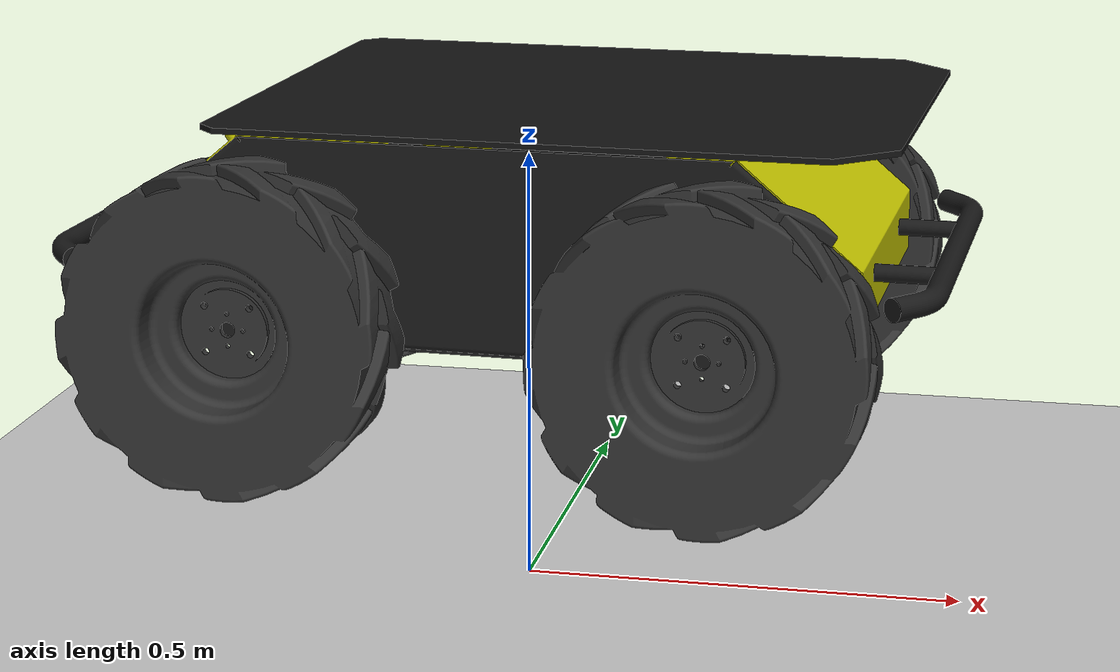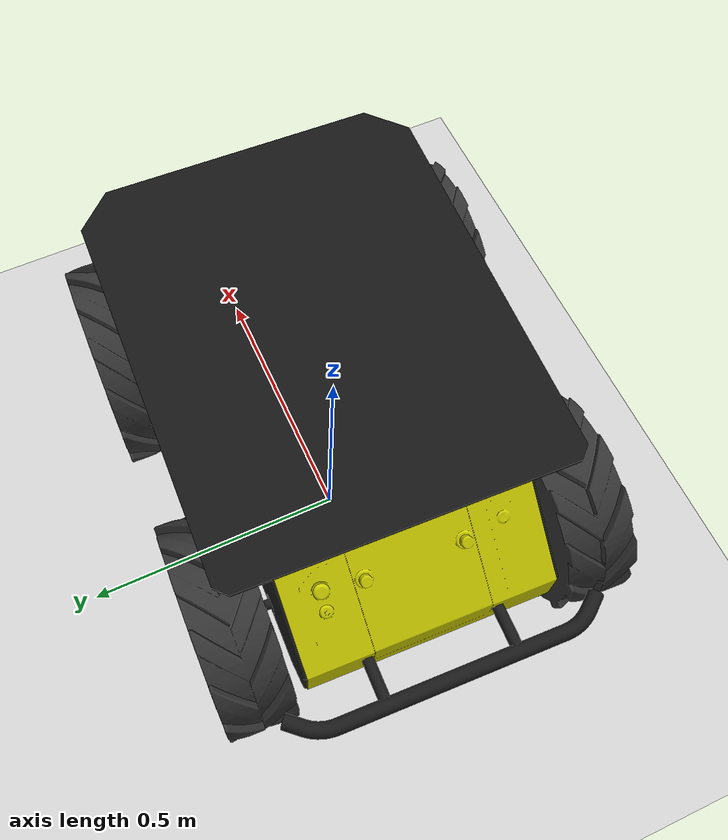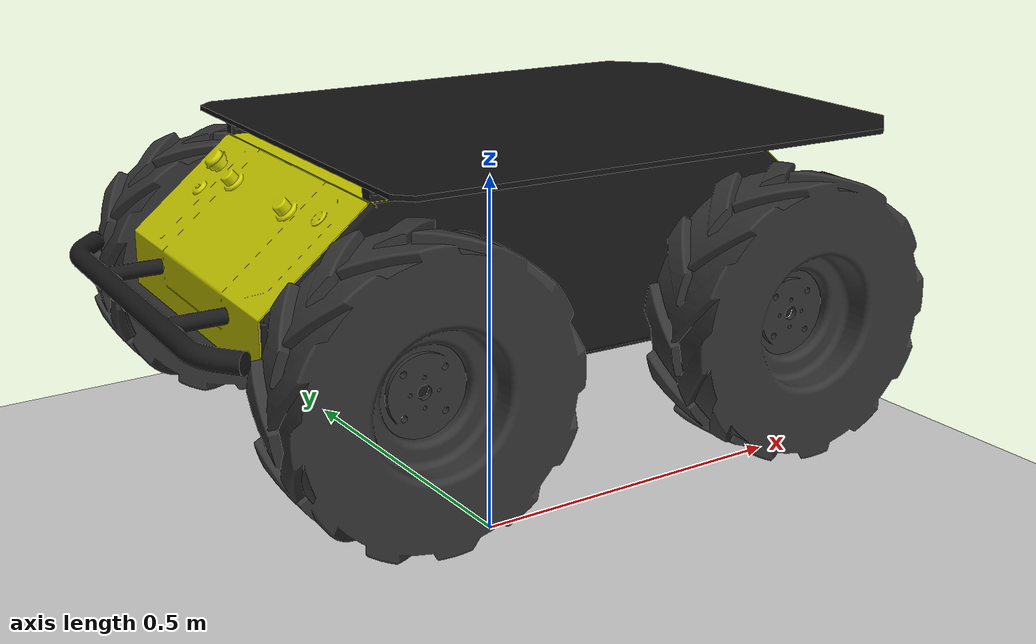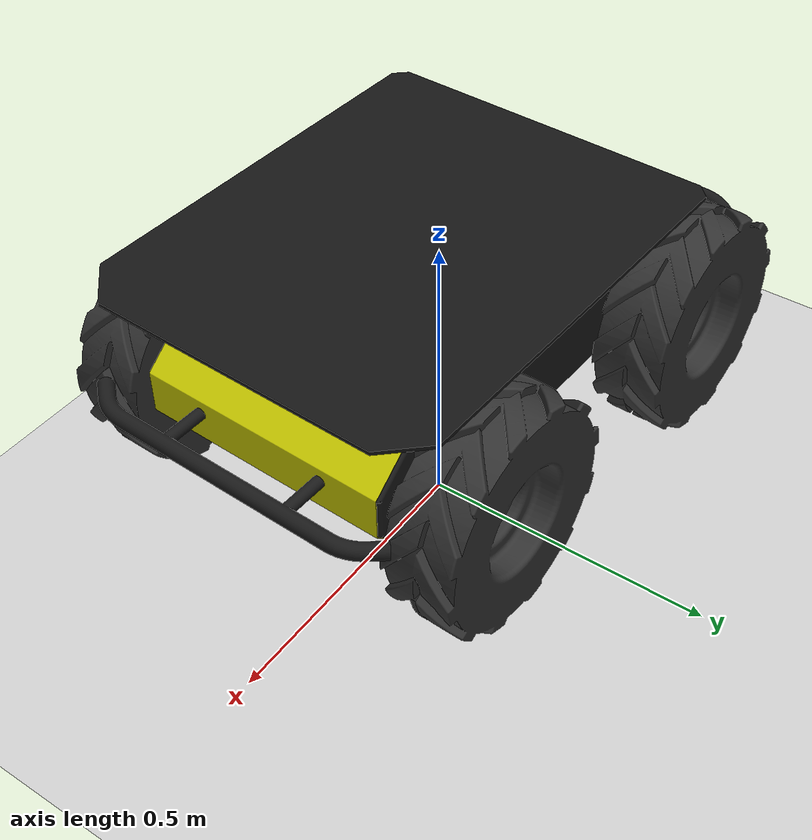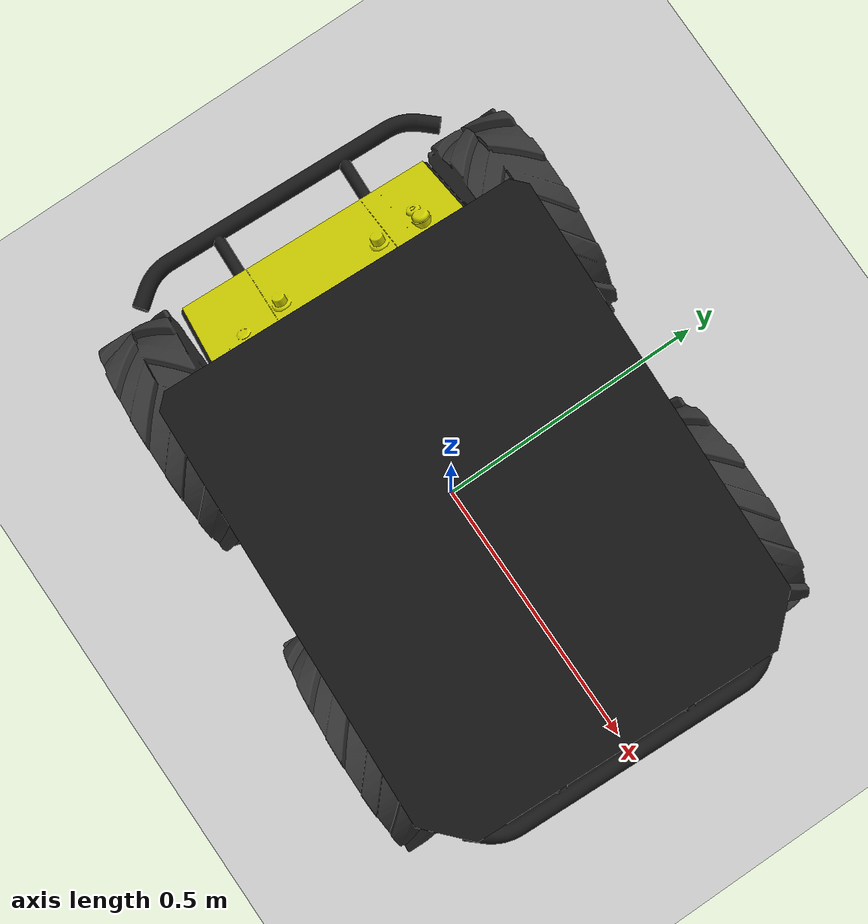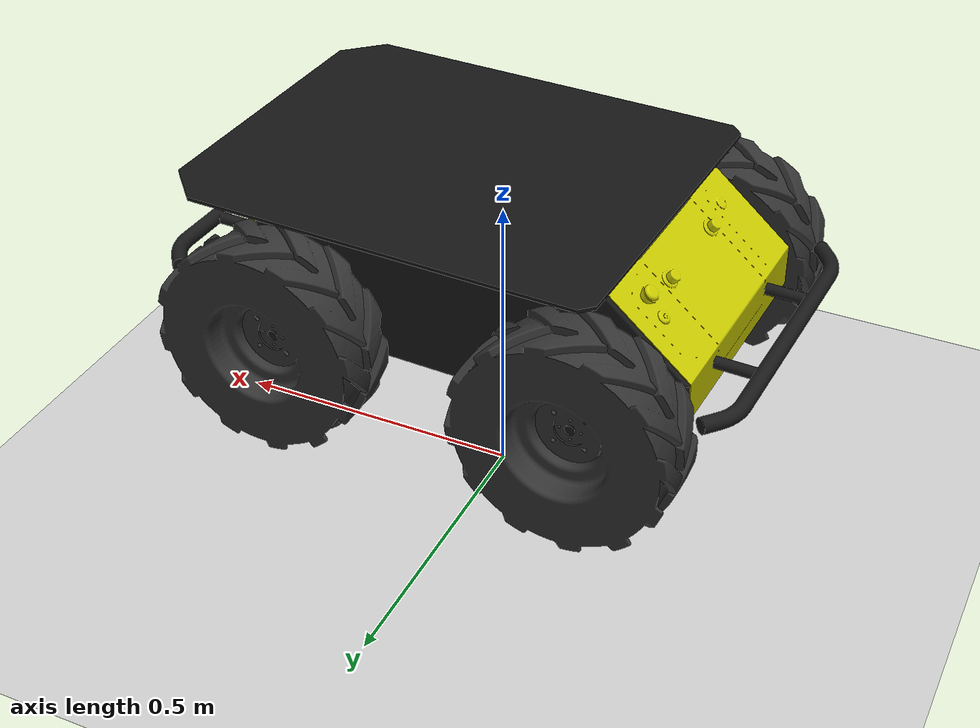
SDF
<sdf version="1.7">
 <world name="default">
  <light name="sun" type="directional">
   <pose>0 0 10 0 -0 0</pose>
   <diffuse>0.8 0.8 0.8 1</diffuse>
   <specular>0.2 0.2 0.2 1</specular>
   <attenuation>
    <range>1000</range>
    <constant>0.9</constant>
    <linear>0.01</linear>
    <quadratic>0.001</quadratic>
   </attenuation>
   <direction>-0.5 0.1 -0.9</direction>
   <spot><inner_angle>0</inner_angle><outer_angle>0</outer_angle><falloff>0</falloff></spot>
  </light>
  <model name="ground_plane">
   <static>1</static>
   <link name="link">
    <collision name="collision">
     <geometry><plane><normal>0 0 1</normal><size>100 100</size></plane></geometry>
     <surface><friction><ode><mu>100</mu><mu2>50</mu2></ode></friction></surface>
    </collision>
    <visual name="visual">
     <cast_shadows>0</cast_shadows>
     <geometry><plane><normal>0 0 1</normal><size>100 100</size></plane></geometry>
     <material>
      <script><uri>file://media/materials/scripts/gazebo.material</uri><name>Gazebo/Grey</name></script>
     </material>
    </visual>
    <velocity_decay><linear>0</linear><angular>0</angular></velocity_decay>
   </link>
  </model>
  <physics type="ode">
   <max_step_size>0.01</max_step_size>
   <real_time_factor>1</real_time_factor>
   <real_time_update_rate>100</real_time_update_rate>
  </physics>
  <scene><ambient>0.4 0.4 0.4 1</ambient><background>0.7 0.7 0.7 1</background><shadows>1</shadows></scene>
  <gravity>0 0 -9.8</gravity>
  <magnetic_field>6e-06 2.3e-05 -4.2e-05</magnetic_field>
  <atmosphere type="adiabatic"/>
  <audio><device>default</device></audio>
  <spherical_coordinates>
   <surface_model>EARTH_WGS84</surface_model>
   <latitude_deg>0</latitude_deg>
   <longitude_deg>0</longitude_deg>
   <elevation>0</elevation>
   <heading_deg>0</heading_deg>
  </spherical_coordinates>
  <model name="husky">
   <link name="base_link">
    <inertial>
     <pose>-0.00065 -0.085 0.062 0 -0 0</pose>
     <mass>46.034</mass>
     <inertia>
      <ixx>0.6022</ixx>
      <ixy>-0.02364</ixy>
      <ixz>-0.1197</ixz>
      <iyy>1.7386</iyy>
      <iyz>-0.001544</iyz>
      <izz>2.0296</izz>
     </inertia>
    </inertial>
    <collision name="base_link_collision">
     <pose>0 0 0.061875 0 -0 0</pose>
     <geometry><box><size>0.9874 0.5709 0.12375</size></box></geometry>
    </collision>
    <collision name="base_link_collision_1">
     <pose>0 0 0.175625 0 -0 0</pose>
     <geometry><box><size>0.78992 0.5709 0.10375</size></box></geometry>
    </collision>
    <collision name="base_link_fixed_joint_lump__top_plate_link_collision_2">
     <pose>0.0812 0 0.245 0 -0 0</pose>
     <geometry>
      <mesh><scale>1 1 1</scale><uri>model://husky_description/meshes/top_plate.stl</uri></mesh>
     </geometry>
    </collision>
    <visual name="base_link_visual">
     <geometry>
      <mesh><scale>1 1 1</scale><uri>model://husky_description/meshes/base_link.dae</uri></mesh>
     </geometry>
    </visual>
    <visual name="base_link_fixed_joint_lump__front_bumper_link_visual_1">
     <pose>0.48 0 0.091 0 -0 0</pose>
     <geometry><mesh><scale>1 1 1</scale><uri>model://husky_description/meshes/bumper.dae</uri></mesh></geometry>
    </visual>
    <visual name="base_link_fixed_joint_lump__rear_bumper_link_visual_2">
     <pose>-0.48 0 0.091 0 -0 3.14159</pose>
     <geometry><mesh><scale>1 1 1</scale><uri>model://husky_description/meshes/bumper.dae</uri></mesh></geometry>
    </visual>
    <visual name="base_link_fixed_joint_lump__top_chassis_link_visual_3">
     <geometry>
      <mesh><scale>1 1 1</scale><uri>model://husky_description/meshes/top_chassis.dae</uri></mesh>
     </geometry>
    </visual>
    <visual name="base_link_fixed_joint_lump__top_plate_link_visual_4">
     <pose>0.0812 0 0.245 0 -0 0</pose>
     <geometry>
      <mesh><scale>1 1 1</scale><uri>model://husky_description/meshes/top_plate.dae</uri></mesh>
     </geometry>
    </visual>
    <visual name="base_link_fixed_joint_lump__user_rail_link_visual_5">
     <pose>0.272 0 0.245 0 -0 0</pose>
     <geometry>
      <mesh><scale>1 1 1</scale><uri>model://husky_description/meshes/user_rail.dae</uri></mesh>
     </geometry>
    </visual>
    <sensor name="gps_sensor" type="gps">
     <plugin name="gps_plugin" filename="libgazebo_ros_gps_sensor.so">
      <ros><remapping>~/out:=gps/data</remapping></ros>
     </plugin>
     <always_on>1</always_on>
     <update_rate>10</update_rate>
    </sensor>
    <sensor name="imu_sensor" type="imu">
     <plugin name="imu_plugin" filename="libgazebo_ros_imu_sensor.so">
      <ros><remapping>~/out:=imu/data_raw</remapping></ros>
      <initial_orientation_as_reference>0</initial_orientation_as_reference>
     </plugin>
     <always_on>1</always_on>
     <update_rate>100</update_rate>
     <visualize>1</visualize>
    </sensor>
   </link>
   <joint name="front_left_wheel_joint" type="revolute">
    <pose relative_to="base_link">0.256 0.2854 0.03282 0 -0 0</pose>
    <parent>base_link</parent>
    <child>front_left_wheel</child>
    <axis>
     <xyz>0 1 0</xyz>
     <limit><lower>-1e+16</lower><upper>1e+16</upper></limit>
     <dynamics><spring_reference>0</spring_reference><spring_stiffness>0</spring_stiffness></dynamics>
    </axis>
   </joint>
   <link name="front_left_wheel">
    <pose relative_to="front_left_wheel_joint">0 0 0 0 -0 0</pose>
    <inertial>
     <mass>2.637</mass>
     <inertia><ixx>0.02467</ixx><ixy>0</ixy><ixz>0</ixz><iyy>0.04411</iyy><iyz>0</iyz><izz>0.02467</izz></inertia>
    </inertial>
    <collision name="front_left_wheel_collision">
     <pose>0 0 0 1.57079 -0 0</pose>
     <geometry><cylinder><length>0.1143</length><radius>0.1651</radius></cylinder></geometry>
     <surface>
      <contact><ode><kp>1e+07</kp><kd>1</kd></ode></contact>
      <friction><ode><mu>1</mu><mu2>0.5</mu2><fdir1>1 0 0</fdir1></ode></friction>
     </surface>
    </collision>
    <visual name="front_left_wheel_visual">
     <geometry><mesh><scale>1 1 1</scale><uri>model://husky_description/meshes/wheel.dae</uri></mesh></geometry>
    </visual>
   </link>
   <joint name="front_right_wheel_joint" type="revolute">
    <pose relative_to="base_link">0.256 -0.2854 0.03282 0 -0 0</pose>
    <parent>base_link</parent>
    <child>front_right_wheel</child>
    <axis>
     <xyz>0 1 0</xyz>
     <limit><lower>-1e+16</lower><upper>1e+16</upper></limit>
     <dynamics><spring_reference>0</spring_reference><spring_stiffness>0</spring_stiffness></dynamics>
    </axis>
   </joint>
   <link name="front_right_wheel">
    <pose relative_to="front_right_wheel_joint">0 0 0 0 -0 0</pose>
    <inertial>
     <mass>2.637</mass>
     <inertia><ixx>0.02467</ixx><ixy>0</ixy><ixz>0</ixz><iyy>0.04411</iyy><iyz>0</iyz><izz>0.02467</izz></inertia>
    </inertial>
    <collision name="front_right_wheel_collision">
     <pose>0 0 0 1.57079 -0 0</pose>
     <geometry><cylinder><length>0.1143</length><radius>0.1651</radius></cylinder></geometry>
     <surface>
      <contact><ode><kp>1e+07</kp><kd>1</kd></ode></contact>
      <friction><ode><mu>1</mu><mu2>0.5</mu2><fdir1>1 0 0</fdir1></ode></friction>
     </surface>
    </collision>
    <visual name="front_right_wheel_visual">
     <geometry><mesh><scale>1 1 1</scale><uri>model://husky_description/meshes/wheel.dae</uri></mesh></geometry>
    </visual>
   </link>
   <joint name="rear_left_wheel_joint" type="revolute">
    <pose relative_to="base_link">-0.256 0.2854 0.03282 0 -0 0</pose>
    <parent>base_link</parent>
    <child>rear_left_wheel</child>
    <axis>
     <xyz>0 1 0</xyz>
     <limit><lower>-1e+16</lower><upper>1e+16</upper></limit>
     <dynamics><spring_reference>0</spring_reference><spring_stiffness>0</spring_stiffness></dynamics>
    </axis>
   </joint>
   <link name="rear_left_wheel">
    <pose relative_to="rear_left_wheel_joint">0 0 0 0 -0 0</pose>
    <inertial>
     <mass>2.637</mass>
     <inertia><ixx>0.02467</ixx><ixy>0</ixy><ixz>0</ixz><iyy>0.04411</iyy><iyz>0</iyz><izz>0.02467</izz></inertia>
    </inertial>
    <collision name="rear_left_wheel_collision">
     <pose>0 0 0 1.57079 -0 0</pose>
     <geometry><cylinder><length>0.1143</length><radius>0.1651</radius></cylinder></geometry>
     <surface>
      <contact><ode><kp>1e+07</kp><kd>1</kd></ode></contact>
      <friction><ode><mu>1</mu><mu2>0.5</mu2><fdir1>1 0 0</fdir1></ode></friction>
     </surface>
    </collision>
    <visual name="rear_left_wheel_visual">
     <geometry><mesh><scale>1 1 1</scale><uri>model://husky_description/meshes/wheel.dae</uri></mesh></geometry>
    </visual>
   </link>
   <joint name="rear_right_wheel_joint" type="revolute">
    <pose relative_to="base_link">-0.256 -0.2854 0.03282 0 -0 0</pose>
    <parent>base_link</parent>
    <child>rear_right_wheel</child>
    <axis>
     <xyz>0 1 0</xyz>
     <limit><lower>-1e+16</lower><upper>1e+16</upper></limit>
     <dynamics><spring_reference>0</spring_reference><spring_stiffness>0</spring_stiffness></dynamics>
    </axis>
   </joint>
   <link name="rear_right_wheel">
    <pose relative_to="rear_right_wheel_joint">0 0 0 0 -0 0</pose>
    <inertial>
     <mass>2.637</mass>
     <inertia><ixx>0.02467</ixx><ixy>0</ixy><ixz>0</ixz><iyy>0.04411</iyy><iyz>0</iyz><izz>0.02467</izz></inertia>
    </inertial>
    <collision name="rear_right_wheel_collision">
     <pose>0 0 0 1.57079 -0 0</pose>
     <geometry><cylinder><length>0.1143</length><radius>0.1651</radius></cylinder></geometry>
     <surface>
      <contact><ode><kp>1e+07</kp><kd>1</kd></ode></contact>
      <friction><ode><mu>1</mu><mu2>0.5</mu2><fdir1>1 0 0</fdir1></ode></friction>
     </surface>
    </collision>
    <visual name="rear_right_wheel_visual">
     <geometry><mesh><scale>1 1 1</scale><uri>model://husky_description/meshes/wheel.dae</uri></mesh></geometry>
    </visual>
   </link>
   <static>0</static>
   <plugin name="gazebo_ros2_control" filename="libgazebo_ros2_control.so">
    <parameters>/home/prakrutk/husky_ws/install/husky_control/share/husky_control/config/control.yaml</parameters>
   </plugin>
   <pose>0.000789 -0.00037 0.32209 8.3e-05 -4.2e-05 -0.040407</pose>
  </model>
 </world>
</sdf>
